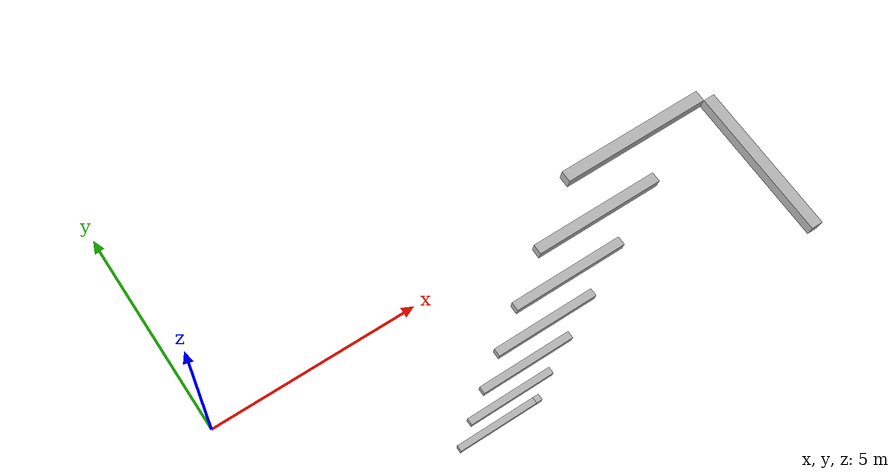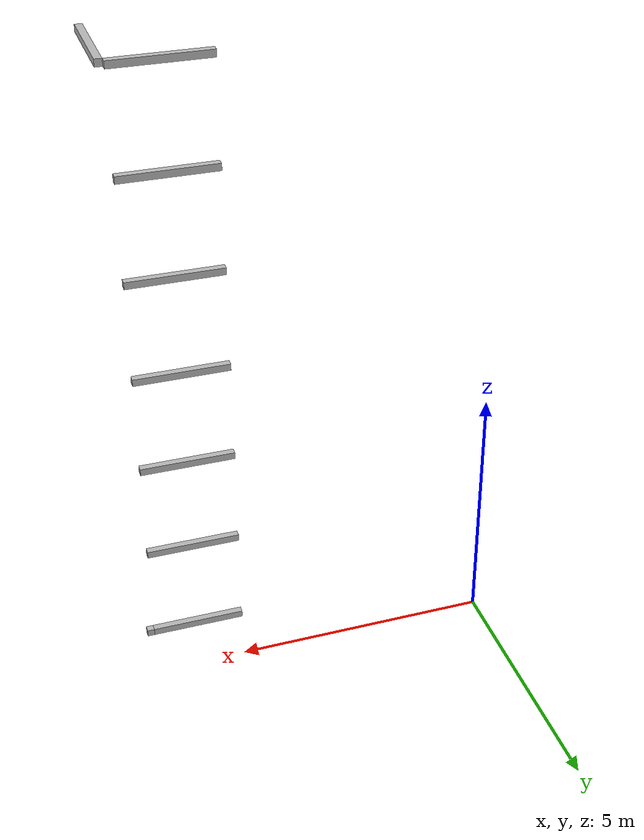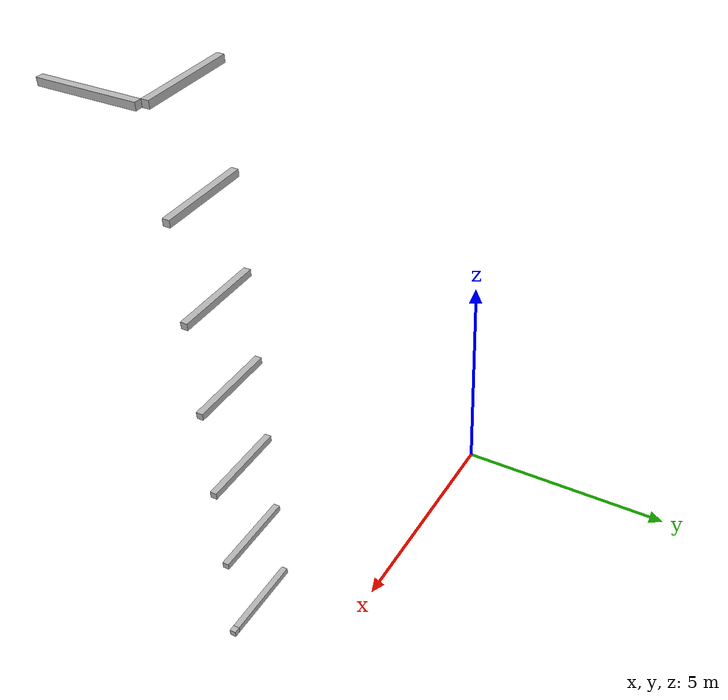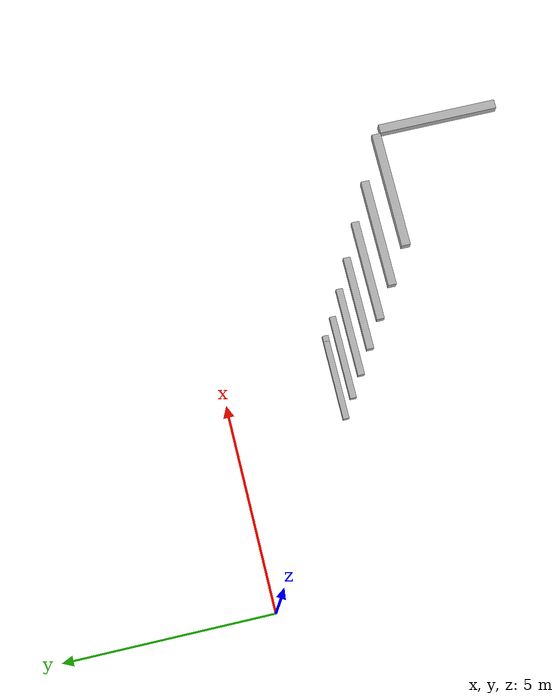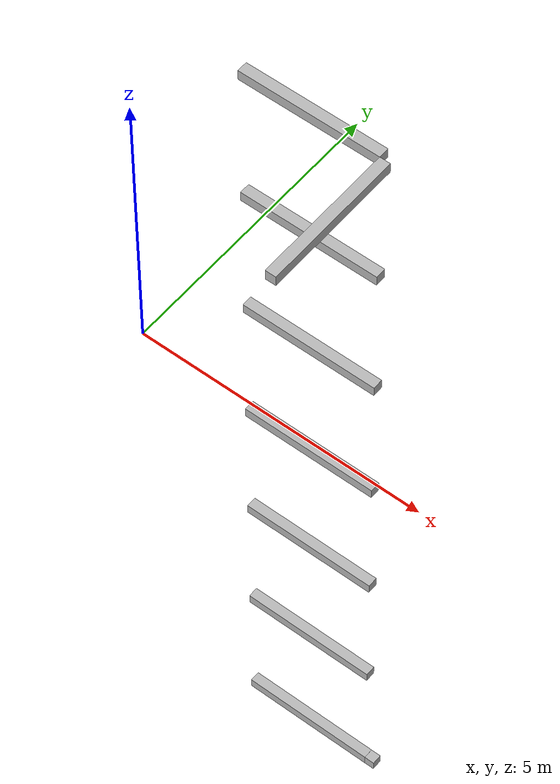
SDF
<sdf version="1.7">
 <world name="default">
  <model name="orthogonal_747_2.000.15_TS">
   <static>1</static>
   <link name="x_link_0_1_5">
    <inertial>
     <mass>1</mass>
     <inertia>
      <ixx>0.166667</ixx>
      <ixy>0</ixy>
      <ixz>0</ixz>
      <iyy>0.166667</iyy>
      <iyz>0</iyz>
      <izz>0.166667</izz>
     </inertia>
    </inertial>
    <pose>11.825 2.15 1.075 0 -0 0</pose>
    <visual name="visual_0">
     <laser_retro>267</laser_retro>
     <geometry><box><size>2 1e-06 0.15</size></box></geometry>
     <material>
      <script><name>Gazebo/Grey</name><uri>file://media/materials/scripts/gazebo.material</uri></script>
      <shader type="pixel"><normal_map>__default__</normal_map></shader>
      <ambient>0.678 0.498 0.659 1</ambient>
      <diffuse>0.7 0.7 0.7 1</diffuse>
      <specular>0.01 0.01 0.01 1</specular>
      <emissive>0 0 0 1</emissive>
     </material>
     <pose>0 -0.075 0 0 -0 0</pose>
     <transparency>1</transparency>
    </visual>
    <visual name="visual_1">
     <laser_retro>268</laser_retro>
     <geometry><box><size>2 1e-06 0.15</size></box></geometry>
     <material>
      <script><name>Gazebo/Grey</name><uri>file://media/materials/scripts/gazebo.material</uri></script>
      <shader type="pixel"><normal_map>__default__</normal_map></shader>
      <ambient>0.447 0.624 0.812 1</ambient>
      <diffuse>0.7 0.7 0.7 1</diffuse>
      <specular>0.01 0.01 0.01 1</specular>
      <emissive>0 0 0 1</emissive>
     </material>
     <pose>0 0.075 0 0 -0 0</pose>
     <transparency>1</transparency>
    </visual>
    <visual name="visual_2">
     <laser_retro>269</laser_retro>
     <geometry><box><size>2 0.15 1e-06</size></box></geometry>
     <material>
      <script><name>Gazebo/Grey</name><uri>file://media/materials/scripts/gazebo.material</uri></script>
      <shader type="pixel"><normal_map>__default__</normal_map></shader>
      <ambient>0.988 0.686 0.243 1</ambient>
      <diffuse>0.7 0.7 0.7 1</diffuse>
      <specular>0.01 0.01 0.01 1</specular>
      <emissive>0 0 0 1</emissive>
     </material>
     <pose>0 0 -0.075 0 -0 0</pose>
     <transparency>1</transparency>
    </visual>
    <visual name="visual_3">
     <laser_retro>270</laser_retro>
     <geometry><box><size>1e-06 0.15 0.15</size></box></geometry>
     <material>
      <script><name>Gazebo/Grey</name><uri>file://media/materials/scripts/gazebo.material</uri></script>
      <shader type="pixel"><normal_map>__default__</normal_map></shader>
      <ambient>0.988 0.914 0.31 1</ambient>
      <diffuse>0.7 0.7 0.7 1</diffuse>
      <specular>0.01 0.01 0.01 1</specular>
      <emissive>0 0 0 1</emissive>
     </material>
     <pose>1 0 0 0 -0 0</pose>
     <transparency>1</transparency>
    </visual>
    <visual name="visual_4">
     <laser_retro>271</laser_retro>
     <geometry><box><size>2 0.15 1e-06</size></box></geometry>
     <material>
      <script><name>Gazebo/Grey</name><uri>file://media/materials/scripts/gazebo.material</uri></script>
      <shader type="pixel"><normal_map>__default__</normal_map></shader>
      <ambient>0.937 0.161 0.161 1</ambient>
      <diffuse>0.7 0.7 0.7 1</diffuse>
      <specular>0.01 0.01 0.01 1</specular>
      <emissive>0 0 0 1</emissive>
     </material>
     <pose>0 0 0.075 0 -0 0</pose>
     <transparency>1</transparency>
    </visual>
    <visual name="visual_5">
     <laser_retro>272</laser_retro>
     <geometry><box><size>1e-06 0.15 0.15</size></box></geometry>
     <material>
      <script><name>Gazebo/Grey</name><uri>file://media/materials/scripts/gazebo.material</uri></script>
      <shader type="pixel"><normal_map>__default__</normal_map></shader>
      <ambient>0.541 0.886 0.204 1</ambient>
      <diffuse>0.7 0.7 0.7 1</diffuse>
      <specular>0.01 0.01 0.01 1</specular>
      <emissive>0 0 0 1</emissive>
     </material>
     <pose>-1 0 0 0 -0 0</pose>
     <transparency>1</transparency>
    </visual>
    <visual name="visual_texture">
     <geometry><box><size>1.9998 0.149985 0.149985</size></box></geometry>
     <material>
      <script>
       <uri>model://BASE_MODELS/simple_block_v2_textured/materials/scripts</uri>
       <uri>model://BASE_MODELS/simple_block_v2_textured/materials/textures</uri>
       <name>metal</name>
      </script>
     </material>
     <laser_retro>273</laser_retro>
    </visual>
    <collision name="collision">
     <geometry><box><size>2 0.15 0.15</size></box></geometry>
     <surface>
      <friction>
       <ode><mu>1</mu><mu2>1</mu2><fdir1>0 0 0</fdir1><slip1>0</slip1><slip2>0</slip2></ode>
       <torsional>
        <coefficient>1</coefficient>
        <patch_radius>0</patch_radius>
        <surface_radius>0</surface_radius>
        <use_patch_radius>1</use_patch_radius>
        <ode><slip>0</slip></ode>
       </torsional>
      </friction>
      <bounce><restitution_coefficient>0</restitution_coefficient><threshold>1e+06</threshold></bounce>
      <contact>
       <collide_without_contact>0</collide_without_contact>
       <collide_without_contact_bitmask>1</collide_without_contact_bitmask>
       <collide_bitmask>1</collide_bitmask>
       <ode>
        <soft_cfm>0</soft_cfm>
        <soft_erp>0.2</soft_erp>
        <kp>1e+13</kp>
        <kd>1</kd>
        <max_vel>0.01</max_vel>
        <min_depth>0</min_depth>
       </ode>
       <bullet>
        <split_impulse>1</split_impulse>
        <split_impulse_penetration_threshold>-0.01</split_impulse_penetration_threshold>
        <soft_cfm>0</soft_cfm>
        <soft_erp>0.2</soft_erp>
        <kp>1e+13</kp>
        <kd>1</kd>
       </bullet>
      </contact>
     </surface>
    </collision>
   </link>
   <link name="u_link_0_1_6">
    <inertial>
     <mass>1</mass>
     <inertia>
      <ixx>0.166667</ixx>
      <ixy>0</ixy>
      <ixz>0</ixz>
      <iyy>0.166667</iyy>
      <iyz>0</iyz>
      <izz>0.166667</izz>
     </inertia>
    </inertial>
    <pose>12.9 2.15 1.075 0 -0 0</pose>
    <visual name="visual_0">
     <laser_retro>302</laser_retro>
     <geometry><box><size>0.15 1e-06 0.15</size></box></geometry>
     <material>
      <script><name>Gazebo/Grey</name><uri>file://media/materials/scripts/gazebo.material</uri></script>
      <shader type="pixel"><normal_map>__default__</normal_map></shader>
      <ambient>0.678 0.498 0.659 1</ambient>
      <diffuse>0.7 0.7 0.7 1</diffuse>
      <specular>0.01 0.01 0.01 1</specular>
      <emissive>0 0 0 1</emissive>
     </material>
     <pose>0 -0.075 0 0 -0 0</pose>
     <transparency>1</transparency>
    </visual>
    <visual name="visual_1">
     <laser_retro>303</laser_retro>
     <geometry><box><size>0.15 1e-06 0.15</size></box></geometry>
     <material>
      <script><name>Gazebo/Grey</name><uri>file://media/materials/scripts/gazebo.material</uri></script>
      <shader type="pixel"><normal_map>__default__</normal_map></shader>
      <ambient>0.447 0.624 0.812 1</ambient>
      <diffuse>0.7 0.7 0.7 1</diffuse>
      <specular>0.01 0.01 0.01 1</specular>
      <emissive>0 0 0 1</emissive>
     </material>
     <pose>0 0.075 0 0 -0 0</pose>
     <transparency>1</transparency>
    </visual>
    <visual name="visual_2">
     <laser_retro>304</laser_retro>
     <geometry><box><size>0.15 0.15 1e-06</size></box></geometry>
     <material>
      <script><name>Gazebo/Grey</name><uri>file://media/materials/scripts/gazebo.material</uri></script>
      <shader type="pixel"><normal_map>__default__</normal_map></shader>
      <ambient>0.988 0.686 0.243 1</ambient>
      <diffuse>0.7 0.7 0.7 1</diffuse>
      <specular>0.01 0.01 0.01 1</specular>
      <emissive>0 0 0 1</emissive>
     </material>
     <pose>0 0 -0.075 0 -0 0</pose>
     <transparency>1</transparency>
    </visual>
    <visual name="visual_3">
     <laser_retro>305</laser_retro>
     <geometry><box><size>1e-06 0.15 0.15</size></box></geometry>
     <material>
      <script><name>Gazebo/Grey</name><uri>file://media/materials/scripts/gazebo.material</uri></script>
      <shader type="pixel"><normal_map>__default__</normal_map></shader>
      <ambient>0.988 0.914 0.31 1</ambient>
      <diffuse>0.7 0.7 0.7 1</diffuse>
      <specular>0.01 0.01 0.01 1</specular>
      <emissive>0 0 0 1</emissive>
     </material>
     <pose>0.075 0 0 0 -0 0</pose>
     <transparency>1</transparency>
    </visual>
    <visual name="visual_4">
     <laser_retro>306</laser_retro>
     <geometry><box><size>0.15 0.15 1e-06</size></box></geometry>
     <material>
      <script><name>Gazebo/Grey</name><uri>file://media/materials/scripts/gazebo.material</uri></script>
      <shader type="pixel"><normal_map>__default__</normal_map></shader>
      <ambient>0.937 0.161 0.161 1</ambient>
      <diffuse>0.7 0.7 0.7 1</diffuse>
      <specular>0.01 0.01 0.01 1</specular>
      <emissive>0 0 0 1</emissive>
     </material>
     <pose>0 0 0.075 0 -0 0</pose>
     <transparency>1</transparency>
    </visual>
    <visual name="visual_5">
     <laser_retro>307</laser_retro>
     <geometry><box><size>1e-06 0.15 0.15</size></box></geometry>
     <material>
      <script><name>Gazebo/Grey</name><uri>file://media/materials/scripts/gazebo.material</uri></script>
      <shader type="pixel"><normal_map>__default__</normal_map></shader>
      <ambient>0.541 0.886 0.204 1</ambient>
      <diffuse>0.7 0.7 0.7 1</diffuse>
      <specular>0.01 0.01 0.01 1</specular>
      <emissive>0 0 0 1</emissive>
     </material>
     <pose>-0.075 0 0 0 -0 0</pose>
     <transparency>1</transparency>
    </visual>
    <visual name="visual_texture">
     <geometry><box><size>0.149985 0.149985 0.149985</size></box></geometry>
     <material>
      <script>
       <uri>model://BASE_MODELS/simple_block_v2_textured/materials/scripts</uri>
       <uri>model://BASE_MODELS/simple_block_v2_textured/materials/textures</uri>
       <name>metal</name>
      </script>
     </material>
     <laser_retro>308</laser_retro>
    </visual>
    <collision name="collision">
     <geometry><box><size>0.15 0.15 0.15</size></box></geometry>
     <surface>
      <friction>
       <ode><mu>1</mu><mu2>1</mu2><fdir1>0 0 0</fdir1><slip1>0</slip1><slip2>0</slip2></ode>
       <torsional>
        <coefficient>1</coefficient>
        <patch_radius>0</patch_radius>
        <surface_radius>0</surface_radius>
        <use_patch_radius>1</use_patch_radius>
        <ode><slip>0</slip></ode>
       </torsional>
      </friction>
      <bounce><restitution_coefficient>0</restitution_coefficient><threshold>1e+06</threshold></bounce>
      <contact>
       <collide_without_contact>0</collide_without_contact>
       <collide_without_contact_bitmask>1</collide_without_contact_bitmask>
       <collide_bitmask>1</collide_bitmask>
       <ode>
        <soft_cfm>0</soft_cfm>
        <soft_erp>0.2</soft_erp>
        <kp>1e+13</kp>
        <kd>1</kd>
        <max_vel>0.01</max_vel>
        <min_depth>0</min_depth>
       </ode>
       <bullet>
        <split_impulse>1</split_impulse>
        <split_impulse_penetration_threshold>-0.01</split_impulse_penetration_threshold>
        <soft_cfm>0</soft_cfm>
        <soft_erp>0.2</soft_erp>
        <kp>1e+13</kp>
        <kd>1</kd>
       </bullet>
      </contact>
     </surface>
    </collision>
   </link>
   <link name="x_link_1_1_5">
    <inertial>
     <mass>1</mass>
     <inertia>
      <ixx>0.166667</ixx>
      <ixy>0</ixy>
      <ixz>0</ixz>
      <iyy>0.166667</iyy>
      <iyz>0</iyz>
      <izz>0.166667</izz>
     </inertia>
    </inertial>
    <pose>11.825 2.15 3.225 0 -0 0</pose>
    <visual name="visual_0">
     <laser_retro>1079</laser_retro>
     <geometry><box><size>2 1e-06 0.15</size></box></geometry>
     <material>
      <script><name>Gazebo/Grey</name><uri>file://media/materials/scripts/gazebo.material</uri></script>
      <shader type="pixel"><normal_map>__default__</normal_map></shader>
      <ambient>0.678 0.498 0.659 1</ambient>
      <diffuse>0.7 0.7 0.7 1</diffuse>
      <specular>0.01 0.01 0.01 1</specular>
      <emissive>0 0 0 1</emissive>
     </material>
     <pose>0 -0.075 0 0 -0 0</pose>
     <transparency>1</transparency>
    </visual>
    <visual name="visual_1">
     <laser_retro>1080</laser_retro>
     <geometry><box><size>2 1e-06 0.15</size></box></geometry>
     <material>
      <script><name>Gazebo/Grey</name><uri>file://media/materials/scripts/gazebo.material</uri></script>
      <shader type="pixel"><normal_map>__default__</normal_map></shader>
      <ambient>0.447 0.624 0.812 1</ambient>
      <diffuse>0.7 0.7 0.7 1</diffuse>
      <specular>0.01 0.01 0.01 1</specular>
      <emissive>0 0 0 1</emissive>
     </material>
     <pose>0 0.075 0 0 -0 0</pose>
     <transparency>1</transparency>
    </visual>
    <visual name="visual_2">
     <laser_retro>1081</laser_retro>
     <geometry><box><size>2 0.15 1e-06</size></box></geometry>
     <material>
      <script><name>Gazebo/Grey</name><uri>file://media/materials/scripts/gazebo.material</uri></script>
      <shader type="pixel"><normal_map>__default__</normal_map></shader>
      <ambient>0.988 0.686 0.243 1</ambient>
      <diffuse>0.7 0.7 0.7 1</diffuse>
      <specular>0.01 0.01 0.01 1</specular>
      <emissive>0 0 0 1</emissive>
     </material>
     <pose>0 0 -0.075 0 -0 0</pose>
     <transparency>1</transparency>
    </visual>
    <visual name="visual_3">
     <laser_retro>1082</laser_retro>
     <geometry><box><size>1e-06 0.15 0.15</size></box></geometry>
     <material>
      <script><name>Gazebo/Grey</name><uri>file://media/materials/scripts/gazebo.material</uri></script>
      <shader type="pixel"><normal_map>__default__</normal_map></shader>
      <ambient>0.988 0.914 0.31 1</ambient>
      <diffuse>0.7 0.7 0.7 1</diffuse>
      <specular>0.01 0.01 0.01 1</specular>
      <emissive>0 0 0 1</emissive>
     </material>
     <pose>1 0 0 0 -0 0</pose>
     <transparency>1</transparency>
    </visual>
    <visual name="visual_4">
     <laser_retro>1083</laser_retro>
     <geometry><box><size>2 0.15 1e-06</size></box></geometry>
     <material>
      <script><name>Gazebo/Grey</name><uri>file://media/materials/scripts/gazebo.material</uri></script>
      <shader type="pixel"><normal_map>__default__</normal_map></shader>
      <ambient>0.937 0.161 0.161 1</ambient>
      <diffuse>0.7 0.7 0.7 1</diffuse>
      <specular>0.01 0.01 0.01 1</specular>
      <emissive>0 0 0 1</emissive>
     </material>
     <pose>0 0 0.075 0 -0 0</pose>
     <transparency>1</transparency>
    </visual>
    <visual name="visual_5">
     <laser_retro>1084</laser_retro>
     <geometry><box><size>1e-06 0.15 0.15</size></box></geometry>
     <material>
      <script><name>Gazebo/Grey</name><uri>file://media/materials/scripts/gazebo.material</uri></script>
      <shader type="pixel"><normal_map>__default__</normal_map></shader>
      <ambient>0.541 0.886 0.204 1</ambient>
      <diffuse>0.7 0.7 0.7 1</diffuse>
      <specular>0.01 0.01 0.01 1</specular>
      <emissive>0 0 0 1</emissive>
     </material>
     <pose>-1 0 0 0 -0 0</pose>
     <transparency>1</transparency>
    </visual>
    <visual name="visual_texture">
     <geometry><box><size>1.9998 0.149985 0.149985</size></box></geometry>
     <material>
      <script>
       <uri>model://BASE_MODELS/simple_block_v2_textured/materials/scripts</uri>
       <uri>model://BASE_MODELS/simple_block_v2_textured/materials/textures</uri>
       <name>metal</name>
      </script>
     </material>
     <laser_retro>1085</laser_retro>
    </visual>
    <collision name="collision">
     <geometry><box><size>2 0.15 0.15</size></box></geometry>
     <surface>
      <friction>
       <ode><mu>1</mu><mu2>1</mu2><fdir1>0 0 0</fdir1><slip1>0</slip1><slip2>0</slip2></ode>
       <torsional>
        <coefficient>1</coefficient>
        <patch_radius>0</patch_radius>
        <surface_radius>0</surface_radius>
        <use_patch_radius>1</use_patch_radius>
        <ode><slip>0</slip></ode>
       </torsional>
      </friction>
      <bounce><restitution_coefficient>0</restitution_coefficient><threshold>1e+06</threshold></bounce>
      <contact>
       <collide_without_contact>0</collide_without_contact>
       <collide_without_contact_bitmask>1</collide_without_contact_bitmask>
       <collide_bitmask>1</collide_bitmask>
       <ode>
        <soft_cfm>0</soft_cfm>
        <soft_erp>0.2</soft_erp>
        <kp>1e+13</kp>
        <kd>1</kd>
        <max_vel>0.01</max_vel>
        <min_depth>0</min_depth>
       </ode>
       <bullet>
        <split_impulse>1</split_impulse>
        <split_impulse_penetration_threshold>-0.01</split_impulse_penetration_threshold>
        <soft_cfm>0</soft_cfm>
        <soft_erp>0.2</soft_erp>
        <kp>1e+13</kp>
        <kd>1</kd>
       </bullet>
      </contact>
     </surface>
    </collision>
   </link>
   <link name="x_link_2_1_5">
    <inertial>
     <mass>1</mass>
     <inertia>
      <ixx>0.166667</ixx>
      <ixy>0</ixy>
      <ixz>0</ixz>
      <iyy>0.166667</iyy>
      <iyz>0</iyz>
      <izz>0.166667</izz>
     </inertia>
    </inertial>
    <pose>11.825 2.15 5.375 0 -0 0</pose>
    <visual name="visual_0">
     <laser_retro>1982</laser_retro>
     <geometry><box><size>2 1e-06 0.15</size></box></geometry>
     <material>
      <script><name>Gazebo/Grey</name><uri>file://media/materials/scripts/gazebo.material</uri></script>
      <shader type="pixel"><normal_map>__default__</normal_map></shader>
      <ambient>0.678 0.498 0.659 1</ambient>
      <diffuse>0.7 0.7 0.7 1</diffuse>
      <specular>0.01 0.01 0.01 1</specular>
      <emissive>0 0 0 1</emissive>
     </material>
     <pose>0 -0.075 0 0 -0 0</pose>
     <transparency>1</transparency>
    </visual>
    <visual name="visual_1">
     <laser_retro>1983</laser_retro>
     <geometry><box><size>2 1e-06 0.15</size></box></geometry>
     <material>
      <script><name>Gazebo/Grey</name><uri>file://media/materials/scripts/gazebo.material</uri></script>
      <shader type="pixel"><normal_map>__default__</normal_map></shader>
      <ambient>0.447 0.624 0.812 1</ambient>
      <diffuse>0.7 0.7 0.7 1</diffuse>
      <specular>0.01 0.01 0.01 1</specular>
      <emissive>0 0 0 1</emissive>
     </material>
     <pose>0 0.075 0 0 -0 0</pose>
     <transparency>1</transparency>
    </visual>
    <visual name="visual_2">
     <laser_retro>1984</laser_retro>
     <geometry><box><size>2 0.15 1e-06</size></box></geometry>
     <material>
      <script><name>Gazebo/Grey</name><uri>file://media/materials/scripts/gazebo.material</uri></script>
      <shader type="pixel"><normal_map>__default__</normal_map></shader>
      <ambient>0.988 0.686 0.243 1</ambient>
      <diffuse>0.7 0.7 0.7 1</diffuse>
      <specular>0.01 0.01 0.01 1</specular>
      <emissive>0 0 0 1</emissive>
     </material>
     <pose>0 0 -0.075 0 -0 0</pose>
     <transparency>1</transparency>
    </visual>
    <visual name="visual_3">
     <laser_retro>1985</laser_retro>
     <geometry><box><size>1e-06 0.15 0.15</size></box></geometry>
     <material>
      <script><name>Gazebo/Grey</name><uri>file://media/materials/scripts/gazebo.material</uri></script>
      <shader type="pixel"><normal_map>__default__</normal_map></shader>
      <ambient>0.988 0.914 0.31 1</ambient>
      <diffuse>0.7 0.7 0.7 1</diffuse>
      <specular>0.01 0.01 0.01 1</specular>
      <emissive>0 0 0 1</emissive>
     </material>
     <pose>1 0 0 0 -0 0</pose>
     <transparency>1</transparency>
    </visual>
    <visual name="visual_4">
     <laser_retro>1986</laser_retro>
     <geometry><box><size>2 0.15 1e-06</size></box></geometry>
     <material>
      <script><name>Gazebo/Grey</name><uri>file://media/materials/scripts/gazebo.material</uri></script>
      <shader type="pixel"><normal_map>__default__</normal_map></shader>
      <ambient>0.937 0.161 0.161 1</ambient>
      <diffuse>0.7 0.7 0.7 1</diffuse>
      <specular>0.01 0.01 0.01 1</specular>
      <emissive>0 0 0 1</emissive>
     </material>
     <pose>0 0 0.075 0 -0 0</pose>
     <transparency>1</transparency>
    </visual>
    <visual name="visual_5">
     <laser_retro>1987</laser_retro>
     <geometry><box><size>1e-06 0.15 0.15</size></box></geometry>
     <material>
      <script><name>Gazebo/Grey</name><uri>file://media/materials/scripts/gazebo.material</uri></script>
      <shader type="pixel"><normal_map>__default__</normal_map></shader>
      <ambient>0.541 0.886 0.204 1</ambient>
      <diffuse>0.7 0.7 0.7 1</diffuse>
      <specular>0.01 0.01 0.01 1</specular>
      <emissive>0 0 0 1</emissive>
     </material>
     <pose>-1 0 0 0 -0 0</pose>
     <transparency>1</transparency>
    </visual>
    <visual name="visual_texture">
     <geometry><box><size>1.9998 0.149985 0.149985</size></box></geometry>
     <material>
      <script>
       <uri>model://BASE_MODELS/simple_block_v2_textured/materials/scripts</uri>
       <uri>model://BASE_MODELS/simple_block_v2_textured/materials/textures</uri>
       <name>metal</name>
      </script>
     </material>
     <laser_retro>1988</laser_retro>
    </visual>
    <collision name="collision">
     <geometry><box><size>2 0.15 0.15</size></box></geometry>
     <surface>
      <friction>
       <ode><mu>1</mu><mu2>1</mu2><fdir1>0 0 0</fdir1><slip1>0</slip1><slip2>0</slip2></ode>
       <torsional>
        <coefficient>1</coefficient>
        <patch_radius>0</patch_radius>
        <surface_radius>0</surface_radius>
        <use_patch_radius>1</use_patch_radius>
        <ode><slip>0</slip></ode>
       </torsional>
      </friction>
      <bounce><restitution_coefficient>0</restitution_coefficient><threshold>1e+06</threshold></bounce>
      <contact>
       <collide_without_contact>0</collide_without_contact>
       <collide_without_contact_bitmask>1</collide_without_contact_bitmask>
       <collide_bitmask>1</collide_bitmask>
       <ode>
        <soft_cfm>0</soft_cfm>
        <soft_erp>0.2</soft_erp>
        <kp>1e+13</kp>
        <kd>1</kd>
        <max_vel>0.01</max_vel>
        <min_depth>0</min_depth>
       </ode>
       <bullet>
        <split_impulse>1</split_impulse>
        <split_impulse_penetration_threshold>-0.01</split_impulse_penetration_threshold>
        <soft_cfm>0</soft_cfm>
        <soft_erp>0.2</soft_erp>
        <kp>1e+13</kp>
        <kd>1</kd>
       </bullet>
      </contact>
     </surface>
    </collision>
   </link>
   <link name="x_link_3_1_5">
    <inertial>
     <mass>1</mass>
     <inertia>
      <ixx>0.166667</ixx>
      <ixy>0</ixy>
      <ixz>0</ixz>
      <iyy>0.166667</iyy>
      <iyz>0</iyz>
      <izz>0.166667</izz>
     </inertia>
    </inertial>
    <pose>11.825 2.15 7.525 0 -0 0</pose>
    <visual name="visual_0">
     <laser_retro>2885</laser_retro>
     <geometry><box><size>2 1e-06 0.15</size></box></geometry>
     <material>
      <script><name>Gazebo/Grey</name><uri>file://media/materials/scripts/gazebo.material</uri></script>
      <shader type="pixel"><normal_map>__default__</normal_map></shader>
      <ambient>0.678 0.498 0.659 1</ambient>
      <diffuse>0.7 0.7 0.7 1</diffuse>
      <specular>0.01 0.01 0.01 1</specular>
      <emissive>0 0 0 1</emissive>
     </material>
     <pose>0 -0.075 0 0 -0 0</pose>
     <transparency>1</transparency>
    </visual>
    <visual name="visual_1">
     <laser_retro>2886</laser_retro>
     <geometry><box><size>2 1e-06 0.15</size></box></geometry>
     <material>
      <script><name>Gazebo/Grey</name><uri>file://media/materials/scripts/gazebo.material</uri></script>
      <shader type="pixel"><normal_map>__default__</normal_map></shader>
      <ambient>0.447 0.624 0.812 1</ambient>
      <diffuse>0.7 0.7 0.7 1</diffuse>
      <specular>0.01 0.01 0.01 1</specular>
      <emissive>0 0 0 1</emissive>
     </material>
     <pose>0 0.075 0 0 -0 0</pose>
     <transparency>1</transparency>
    </visual>
    <visual name="visual_2">
     <laser_retro>2887</laser_retro>
     <geometry><box><size>2 0.15 1e-06</size></box></geometry>
     <material>
      <script><name>Gazebo/Grey</name><uri>file://media/materials/scripts/gazebo.material</uri></script>
      <shader type="pixel"><normal_map>__default__</normal_map></shader>
      <ambient>0.988 0.686 0.243 1</ambient>
      <diffuse>0.7 0.7 0.7 1</diffuse>
      <specular>0.01 0.01 0.01 1</specular>
      <emissive>0 0 0 1</emissive>
     </material>
     <pose>0 0 -0.075 0 -0 0</pose>
     <transparency>1</transparency>
    </visual>
    <visual name="visual_3">
     <laser_retro>2888</laser_retro>
     <geometry><box><size>1e-06 0.15 0.15</size></box></geometry>
     <material>
      <script><name>Gazebo/Grey</name><uri>file://media/materials/scripts/gazebo.material</uri></script>
      <shader type="pixel"><normal_map>__default__</normal_map></shader>
      <ambient>0.988 0.914 0.31 1</ambient>
      <diffuse>0.7 0.7 0.7 1</diffuse>
      <specular>0.01 0.01 0.01 1</specular>
      <emissive>0 0 0 1</emissive>
     </material>
     <pose>1 0 0 0 -0 0</pose>
     <transparency>1</transparency>
    </visual>
    <visual name="visual_4">
     <laser_retro>2889</laser_retro>
     <geometry><box><size>2 0.15 1e-06</size></box></geometry>
     <material>
      <script><name>Gazebo/Grey</name><uri>file://media/materials/scripts/gazebo.material</uri></script>
      <shader type="pixel"><normal_map>__default__</normal_map></shader>
      <ambient>0.937 0.161 0.161 1</ambient>
      <diffuse>0.7 0.7 0.7 1</diffuse>
      <specular>0.01 0.01 0.01 1</specular>
      <emissive>0 0 0 1</emissive>
     </material>
     <pose>0 0 0.075 0 -0 0</pose>
     <transparency>1</transparency>
    </visual>
    <visual name="visual_5">
     <laser_retro>2890</laser_retro>
     <geometry><box><size>1e-06 0.15 0.15</size></box></geometry>
     <material>
      <script><name>Gazebo/Grey</name><uri>file://media/materials/scripts/gazebo.material</uri></script>
      <shader type="pixel"><normal_map>__default__</normal_map></shader>
      <ambient>0.541 0.886 0.204 1</ambient>
      <diffuse>0.7 0.7 0.7 1</diffuse>
      <specular>0.01 0.01 0.01 1</specular>
      <emissive>0 0 0 1</emissive>
     </material>
     <pose>-1 0 0 0 -0 0</pose>
     <transparency>1</transparency>
    </visual>
    <visual name="visual_texture">
     <geometry><box><size>1.9998 0.149985 0.149985</size></box></geometry>
     <material>
      <script>
       <uri>model://BASE_MODELS/simple_block_v2_textured/materials/scripts</uri>
       <uri>model://BASE_MODELS/simple_block_v2_textured/materials/textures</uri>
       <name>metal</name>
      </script>
     </material>
     <laser_retro>2891</laser_retro>
    </visual>
    <collision name="collision">
     <geometry><box><size>2 0.15 0.15</size></box></geometry>
     <surface>
      <friction>
       <ode><mu>1</mu><mu2>1</mu2><fdir1>0 0 0</fdir1><slip1>0</slip1><slip2>0</slip2></ode>
       <torsional>
        <coefficient>1</coefficient>
        <patch_radius>0</patch_radius>
        <surface_radius>0</surface_radius>
        <use_patch_radius>1</use_patch_radius>
        <ode><slip>0</slip></ode>
       </torsional>
      </friction>
      <bounce><restitution_coefficient>0</restitution_coefficient><threshold>1e+06</threshold></bounce>
      <contact>
       <collide_without_contact>0</collide_without_contact>
       <collide_without_contact_bitmask>1</collide_without_contact_bitmask>
       <collide_bitmask>1</collide_bitmask>
       <ode>
        <soft_cfm>0</soft_cfm>
        <soft_erp>0.2</soft_erp>
        <kp>1e+13</kp>
        <kd>1</kd>
        <max_vel>0.01</max_vel>
        <min_depth>0</min_depth>
       </ode>
       <bullet>
        <split_impulse>1</split_impulse>
        <split_impulse_penetration_threshold>-0.01</split_impulse_penetration_threshold>
        <soft_cfm>0</soft_cfm>
        <soft_erp>0.2</soft_erp>
        <kp>1e+13</kp>
        <kd>1</kd>
       </bullet>
      </contact>
     </surface>
    </collision>
   </link>
   <link name="x_link_4_1_5">
    <inertial>
     <mass>1</mass>
     <inertia>
      <ixx>0.166667</ixx>
      <ixy>0</ixy>
      <ixz>0</ixz>
      <iyy>0.166667</iyy>
      <iyz>0</iyz>
      <izz>0.166667</izz>
     </inertia>
    </inertial>
    <pose>11.825 2.15 9.675 0 -0 0</pose>
    <visual name="visual_0">
     <laser_retro>3788</laser_retro>
     <geometry><box><size>2 1e-06 0.15</size></box></geometry>
     <material>
      <script><name>Gazebo/Grey</name><uri>file://media/materials/scripts/gazebo.material</uri></script>
      <shader type="pixel"><normal_map>__default__</normal_map></shader>
      <ambient>0.678 0.498 0.659 1</ambient>
      <diffuse>0.7 0.7 0.7 1</diffuse>
      <specular>0.01 0.01 0.01 1</specular>
      <emissive>0 0 0 1</emissive>
     </material>
     <pose>0 -0.075 0 0 -0 0</pose>
     <transparency>1</transparency>
    </visual>
    <visual name="visual_1">
     <laser_retro>3789</laser_retro>
     <geometry><box><size>2 1e-06 0.15</size></box></geometry>
     <material>
      <script><name>Gazebo/Grey</name><uri>file://media/materials/scripts/gazebo.material</uri></script>
      <shader type="pixel"><normal_map>__default__</normal_map></shader>
      <ambient>0.447 0.624 0.812 1</ambient>
      <diffuse>0.7 0.7 0.7 1</diffuse>
      <specular>0.01 0.01 0.01 1</specular>
      <emissive>0 0 0 1</emissive>
     </material>
     <pose>0 0.075 0 0 -0 0</pose>
     <transparency>1</transparency>
    </visual>
    <visual name="visual_2">
     <laser_retro>3790</laser_retro>
     <geometry><box><size>2 0.15 1e-06</size></box></geometry>
     <material>
      <script><name>Gazebo/Grey</name><uri>file://media/materials/scripts/gazebo.material</uri></script>
      <shader type="pixel"><normal_map>__default__</normal_map></shader>
      <ambient>0.988 0.686 0.243 1</ambient>
      <diffuse>0.7 0.7 0.7 1</diffuse>
      <specular>0.01 0.01 0.01 1</specular>
      <emissive>0 0 0 1</emissive>
     </material>
     <pose>0 0 -0.075 0 -0 0</pose>
     <transparency>1</transparency>
    </visual>
    <visual name="visual_3">
     <laser_retro>3791</laser_retro>
     <geometry><box><size>1e-06 0.15 0.15</size></box></geometry>
     <material>
      <script><name>Gazebo/Grey</name><uri>file://media/materials/scripts/gazebo.material</uri></script>
      <shader type="pixel"><normal_map>__default__</normal_map></shader>
      <ambient>0.988 0.914 0.31 1</ambient>
      <diffuse>0.7 0.7 0.7 1</diffuse>
      <specular>0.01 0.01 0.01 1</specular>
      <emissive>0 0 0 1</emissive>
     </material>
     <pose>1 0 0 0 -0 0</pose>
     <transparency>1</transparency>
    </visual>
    <visual name="visual_4">
     <laser_retro>3792</laser_retro>
     <geometry><box><size>2 0.15 1e-06</size></box></geometry>
     <material>
      <script><name>Gazebo/Grey</name><uri>file://media/materials/scripts/gazebo.material</uri></script>
      <shader type="pixel"><normal_map>__default__</normal_map></shader>
      <ambient>0.937 0.161 0.161 1</ambient>
      <diffuse>0.7 0.7 0.7 1</diffuse>
      <specular>0.01 0.01 0.01 1</specular>
      <emissive>0 0 0 1</emissive>
     </material>
     <pose>0 0 0.075 0 -0 0</pose>
     <transparency>1</transparency>
    </visual>
    <visual name="visual_5">
     <laser_retro>3793</laser_retro>
     <geometry><box><size>1e-06 0.15 0.15</size></box></geometry>
     <material>
      <script><name>Gazebo/Grey</name><uri>file://media/materials/scripts/gazebo.material</uri></script>
      <shader type="pixel"><normal_map>__default__</normal_map></shader>
      <ambient>0.541 0.886 0.204 1</ambient>
      <diffuse>0.7 0.7 0.7 1</diffuse>
      <specular>0.01 0.01 0.01 1</specular>
      <emissive>0 0 0 1</emissive>
     </material>
     <pose>-1 0 0 0 -0 0</pose>
     <transparency>1</transparency>
    </visual>
    <visual name="visual_texture">
     <geometry><box><size>1.9998 0.149985 0.149985</size></box></geometry>
     <material>
      <script>
       <uri>model://BASE_MODELS/simple_block_v2_textured/materials/scripts</uri>
       <uri>model://BASE_MODELS/simple_block_v2_textured/materials/textures</uri>
       <name>metal</name>
      </script>
     </material>
     <laser_retro>3794</laser_retro>
    </visual>
    <collision name="collision">
     <geometry><box><size>2 0.15 0.15</size></box></geometry>
     <surface>
      <friction>
       <ode><mu>1</mu><mu2>1</mu2><fdir1>0 0 0</fdir1><slip1>0</slip1><slip2>0</slip2></ode>
       <torsional>
        <coefficient>1</coefficient>
        <patch_radius>0</patch_radius>
        <surface_radius>0</surface_radius>
        <use_patch_radius>1</use_patch_radius>
        <ode><slip>0</slip></ode>
       </torsional>
      </friction>
      <bounce><restitution_coefficient>0</restitution_coefficient><threshold>1e+06</threshold></bounce>
      <contact>
       <collide_without_contact>0</collide_without_contact>
       <collide_without_contact_bitmask>1</collide_without_contact_bitmask>
       <collide_bitmask>1</collide_bitmask>
       <ode>
        <soft_cfm>0</soft_cfm>
        <soft_erp>0.2</soft_erp>
        <kp>1e+13</kp>
        <kd>1</kd>
        <max_vel>0.01</max_vel>
        <min_depth>0</min_depth>
       </ode>
       <bullet>
        <split_impulse>1</split_impulse>
        <split_impulse_penetration_threshold>-0.01</split_impulse_penetration_threshold>
        <soft_cfm>0</soft_cfm>
        <soft_erp>0.2</soft_erp>
        <kp>1e+13</kp>
        <kd>1</kd>
       </bullet>
      </contact>
     </surface>
    </collision>
   </link>
   <link name="x_link_5_1_5">
    <inertial>
     <mass>1</mass>
     <inertia>
      <ixx>0.166667</ixx>
      <ixy>0</ixy>
      <ixz>0</ixz>
      <iyy>0.166667</iyy>
      <iyz>0</iyz>
      <izz>0.166667</izz>
     </inertia>
    </inertial>
    <pose>11.825 2.15 11.825 0 -0 0</pose>
    <visual name="visual_0">
     <laser_retro>4691</laser_retro>
     <geometry><box><size>2 1e-06 0.15</size></box></geometry>
     <material>
      <script><name>Gazebo/Grey</name><uri>file://media/materials/scripts/gazebo.material</uri></script>
      <shader type="pixel"><normal_map>__default__</normal_map></shader>
      <ambient>0.678 0.498 0.659 1</ambient>
      <diffuse>0.7 0.7 0.7 1</diffuse>
      <specular>0.01 0.01 0.01 1</specular>
      <emissive>0 0 0 1</emissive>
     </material>
     <pose>0 -0.075 0 0 -0 0</pose>
     <transparency>1</transparency>
    </visual>
    <visual name="visual_1">
     <laser_retro>4692</laser_retro>
     <geometry><box><size>2 1e-06 0.15</size></box></geometry>
     <material>
      <script><name>Gazebo/Grey</name><uri>file://media/materials/scripts/gazebo.material</uri></script>
      <shader type="pixel"><normal_map>__default__</normal_map></shader>
      <ambient>0.447 0.624 0.812 1</ambient>
      <diffuse>0.7 0.7 0.7 1</diffuse>
      <specular>0.01 0.01 0.01 1</specular>
      <emissive>0 0 0 1</emissive>
     </material>
     <pose>0 0.075 0 0 -0 0</pose>
     <transparency>1</transparency>
    </visual>
    <visual name="visual_2">
     <laser_retro>4693</laser_retro>
     <geometry><box><size>2 0.15 1e-06</size></box></geometry>
     <material>
      <script><name>Gazebo/Grey</name><uri>file://media/materials/scripts/gazebo.material</uri></script>
      <shader type="pixel"><normal_map>__default__</normal_map></shader>
      <ambient>0.988 0.686 0.243 1</ambient>
      <diffuse>0.7 0.7 0.7 1</diffuse>
      <specular>0.01 0.01 0.01 1</specular>
      <emissive>0 0 0 1</emissive>
     </material>
     <pose>0 0 -0.075 0 -0 0</pose>
     <transparency>1</transparency>
    </visual>
    <visual name="visual_3">
     <laser_retro>4694</laser_retro>
     <geometry><box><size>1e-06 0.15 0.15</size></box></geometry>
     <material>
      <script><name>Gazebo/Grey</name><uri>file://media/materials/scripts/gazebo.material</uri></script>
      <shader type="pixel"><normal_map>__default__</normal_map></shader>
      <ambient>0.988 0.914 0.31 1</ambient>
      <diffuse>0.7 0.7 0.7 1</diffuse>
      <specular>0.01 0.01 0.01 1</specular>
      <emissive>0 0 0 1</emissive>
     </material>
     <pose>1 0 0 0 -0 0</pose>
     <transparency>1</transparency>
    </visual>
    <visual name="visual_4">
     <laser_retro>4695</laser_retro>
     <geometry><box><size>2 0.15 1e-06</size></box></geometry>
     <material>
      <script><name>Gazebo/Grey</name><uri>file://media/materials/scripts/gazebo.material</uri></script>
      <shader type="pixel"><normal_map>__default__</normal_map></shader>
      <ambient>0.937 0.161 0.161 1</ambient>
      <diffuse>0.7 0.7 0.7 1</diffuse>
      <specular>0.01 0.01 0.01 1</specular>
      <emissive>0 0 0 1</emissive>
     </material>
     <pose>0 0 0.075 0 -0 0</pose>
     <transparency>1</transparency>
    </visual>
    <visual name="visual_5">
     <laser_retro>4696</laser_retro>
     <geometry><box><size>1e-06 0.15 0.15</size></box></geometry>
     <material>
      <script><name>Gazebo/Grey</name><uri>file://media/materials/scripts/gazebo.material</uri></script>
      <shader type="pixel"><normal_map>__default__</normal_map></shader>
      <ambient>0.541 0.886 0.204 1</ambient>
      <diffuse>0.7 0.7 0.7 1</diffuse>
      <specular>0.01 0.01 0.01 1</specular>
      <emissive>0 0 0 1</emissive>
     </material>
     <pose>-1 0 0 0 -0 0</pose>
     <transparency>1</transparency>
    </visual>
    <visual name="visual_texture">
     <geometry><box><size>1.9998 0.149985 0.149985</size></box></geometry>
     <material>
      <script>
       <uri>model://BASE_MODELS/simple_block_v2_textured/materials/scripts</uri>
       <uri>model://BASE_MODELS/simple_block_v2_textured/materials/textures</uri>
       <name>metal</name>
      </script>
     </material>
     <laser_retro>4697</laser_retro>
    </visual>
    <collision name="collision">
     <geometry><box><size>2 0.15 0.15</size></box></geometry>
     <surface>
      <friction>
       <ode><mu>1</mu><mu2>1</mu2><fdir1>0 0 0</fdir1><slip1>0</slip1><slip2>0</slip2></ode>
       <torsional>
        <coefficient>1</coefficient>
        <patch_radius>0</patch_radius>
        <surface_radius>0</surface_radius>
        <use_patch_radius>1</use_patch_radius>
        <ode><slip>0</slip></ode>
       </torsional>
      </friction>
      <bounce><restitution_coefficient>0</restitution_coefficient><threshold>1e+06</threshold></bounce>
      <contact>
       <collide_without_contact>0</collide_without_contact>
       <collide_without_contact_bitmask>1</collide_without_contact_bitmask>
       <collide_bitmask>1</collide_bitmask>
       <ode>
        <soft_cfm>0</soft_cfm>
        <soft_erp>0.2</soft_erp>
        <kp>1e+13</kp>
        <kd>1</kd>
        <max_vel>0.01</max_vel>
        <min_depth>0</min_depth>
       </ode>
       <bullet>
        <split_impulse>1</split_impulse>
        <split_impulse_penetration_threshold>-0.01</split_impulse_penetration_threshold>
        <soft_cfm>0</soft_cfm>
        <soft_erp>0.2</soft_erp>
        <kp>1e+13</kp>
        <kd>1</kd>
       </bullet>
      </contact>
     </surface>
    </collision>
   </link>
   <link name="y_link_6_0_6">
    <inertial>
     <mass>1</mass>
     <inertia>
      <ixx>0.166667</ixx>
      <ixy>0</ixy>
      <ixz>0</ixz>
      <iyy>0.166667</iyy>
      <iyz>0</iyz>
      <izz>0.166667</izz>
     </inertia>
    </inertial>
    <pose>12.9 1.075 13.975 0 -0 0</pose>
    <visual name="visual_0">
     <laser_retro>5440</laser_retro>
     <geometry><box><size>0.15 1e-06 0.15</size></box></geometry>
     <material>
      <script><name>Gazebo/Grey</name><uri>file://media/materials/scripts/gazebo.material</uri></script>
      <shader type="pixel"><normal_map>__default__</normal_map></shader>
      <ambient>0.678 0.498 0.659 1</ambient>
      <diffuse>0.7 0.7 0.7 1</diffuse>
      <specular>0.01 0.01 0.01 1</specular>
      <emissive>0 0 0 1</emissive>
     </material>
     <pose>0 -1 0 0 -0 0</pose>
     <transparency>1</transparency>
    </visual>
    <visual name="visual_1">
     <laser_retro>5441</laser_retro>
     <geometry><box><size>0.15 1e-06 0.15</size></box></geometry>
     <material>
      <script><name>Gazebo/Grey</name><uri>file://media/materials/scripts/gazebo.material</uri></script>
      <shader type="pixel"><normal_map>__default__</normal_map></shader>
      <ambient>0.447 0.624 0.812 1</ambient>
      <diffuse>0.7 0.7 0.7 1</diffuse>
      <specular>0.01 0.01 0.01 1</specular>
      <emissive>0 0 0 1</emissive>
     </material>
     <pose>0 1 0 0 -0 0</pose>
     <transparency>1</transparency>
    </visual>
    <visual name="visual_2">
     <laser_retro>5442</laser_retro>
     <geometry><box><size>0.15 2 1e-06</size></box></geometry>
     <material>
      <script><name>Gazebo/Grey</name><uri>file://media/materials/scripts/gazebo.material</uri></script>
      <shader type="pixel"><normal_map>__default__</normal_map></shader>
      <ambient>0.988 0.686 0.243 1</ambient>
      <diffuse>0.7 0.7 0.7 1</diffuse>
      <specular>0.01 0.01 0.01 1</specular>
      <emissive>0 0 0 1</emissive>
     </material>
     <pose>0 0 -0.075 0 -0 0</pose>
     <transparency>1</transparency>
    </visual>
    <visual name="visual_3">
     <laser_retro>5443</laser_retro>
     <geometry><box><size>1e-06 2 0.15</size></box></geometry>
     <material>
      <script><name>Gazebo/Grey</name><uri>file://media/materials/scripts/gazebo.material</uri></script>
      <shader type="pixel"><normal_map>__default__</normal_map></shader>
      <ambient>0.988 0.914 0.31 1</ambient>
      <diffuse>0.7 0.7 0.7 1</diffuse>
      <specular>0.01 0.01 0.01 1</specular>
      <emissive>0 0 0 1</emissive>
     </material>
     <pose>0.075 0 0 0 -0 0</pose>
     <transparency>1</transparency>
    </visual>
    <visual name="visual_4">
     <laser_retro>5444</laser_retro>
     <geometry><box><size>0.15 2 1e-06</size></box></geometry>
     <material>
      <script><name>Gazebo/Grey</name><uri>file://media/materials/scripts/gazebo.material</uri></script>
      <shader type="pixel"><normal_map>__default__</normal_map></shader>
      <ambient>0.937 0.161 0.161 1</ambient>
      <diffuse>0.7 0.7 0.7 1</diffuse>
      <specular>0.01 0.01 0.01 1</specular>
      <emissive>0 0 0 1</emissive>
     </material>
     <pose>0 0 0.075 0 -0 0</pose>
     <transparency>1</transparency>
    </visual>
    <visual name="visual_5">
     <laser_retro>5445</laser_retro>
     <geometry><box><size>1e-06 2 0.15</size></box></geometry>
     <material>
      <script><name>Gazebo/Grey</name><uri>file://media/materials/scripts/gazebo.material</uri></script>
      <shader type="pixel"><normal_map>__default__</normal_map></shader>
      <ambient>0.541 0.886 0.204 1</ambient>
      <diffuse>0.7 0.7 0.7 1</diffuse>
      <specular>0.01 0.01 0.01 1</specular>
      <emissive>0 0 0 1</emissive>
     </material>
     <pose>-0.075 0 0 0 -0 0</pose>
     <transparency>1</transparency>
    </visual>
    <visual name="visual_texture">
     <geometry><box><size>0.149985 1.9998 0.149985</size></box></geometry>
     <material>
      <script>
       <uri>model://BASE_MODELS/simple_block_v2_textured/materials/scripts</uri>
       <uri>model://BASE_MODELS/simple_block_v2_textured/materials/textures</uri>
       <name>metal</name>
      </script>
     </material>
     <laser_retro>5446</laser_retro>
    </visual>
    <collision name="collision">
     <geometry><box><size>0.15 2 0.15</size></box></geometry>
     <surface>
      <friction>
       <ode><mu>1</mu><mu2>1</mu2><fdir1>0 0 0</fdir1><slip1>0</slip1><slip2>0</slip2></ode>
       <torsional>
        <coefficient>1</coefficient>
        <patch_radius>0</patch_radius>
        <surface_radius>0</surface_radius>
        <use_patch_radius>1</use_patch_radius>
        <ode><slip>0</slip></ode>
       </torsional>
      </friction>
      <bounce><restitution_coefficient>0</restitution_coefficient><threshold>1e+06</threshold></bounce>
      <contact>
       <collide_without_contact>0</collide_without_contact>
       <collide_without_contact_bitmask>1</collide_without_contact_bitmask>
       <collide_bitmask>1</collide_bitmask>
       <ode>
        <soft_cfm>0</soft_cfm>
        <soft_erp>0.2</soft_erp>
        <kp>1e+13</kp>
        <kd>1</kd>
        <max_vel>0.01</max_vel>
        <min_depth>0</min_depth>
       </ode>
       <bullet>
        <split_impulse>1</split_impulse>
        <split_impulse_penetration_threshold>-0.01</split_impulse_penetration_threshold>
        <soft_cfm>0</soft_cfm>
        <soft_erp>0.2</soft_erp>
        <kp>1e+13</kp>
        <kd>1</kd>
       </bullet>
      </contact>
     </surface>
    </collision>
   </link>
   <link name="x_link_6_1_5">
    <inertial>
     <mass>1</mass>
     <inertia>
      <ixx>0.166667</ixx>
      <ixy>0</ixy>
      <ixz>0</ixz>
      <iyy>0.166667</iyy>
      <iyz>0</iyz>
      <izz>0.166667</izz>
     </inertia>
    </inertial>
    <pose>11.825 2.15 13.975 0 -0 0</pose>
    <visual name="visual_0">
     <laser_retro>5622</laser_retro>
     <geometry><box><size>2 1e-06 0.15</size></box></geometry>
     <material>
      <script><name>Gazebo/Grey</name><uri>file://media/materials/scripts/gazebo.material</uri></script>
      <shader type="pixel"><normal_map>__default__</normal_map></shader>
      <ambient>0.678 0.498 0.659 1</ambient>
      <diffuse>0.7 0.7 0.7 1</diffuse>
      <specular>0.01 0.01 0.01 1</specular>
      <emissive>0 0 0 1</emissive>
     </material>
     <pose>0 -0.075 0 0 -0 0</pose>
     <transparency>1</transparency>
    </visual>
    <visual name="visual_1">
     <laser_retro>5623</laser_retro>
     <geometry><box><size>2 1e-06 0.15</size></box></geometry>
     <material>
      <script><name>Gazebo/Grey</name><uri>file://media/materials/scripts/gazebo.material</uri></script>
      <shader type="pixel"><normal_map>__default__</normal_map></shader>
      <ambient>0.447 0.624 0.812 1</ambient>
      <diffuse>0.7 0.7 0.7 1</diffuse>
      <specular>0.01 0.01 0.01 1</specular>
      <emissive>0 0 0 1</emissive>
     </material>
     <pose>0 0.075 0 0 -0 0</pose>
     <transparency>1</transparency>
    </visual>
    <visual name="visual_2">
     <laser_retro>5624</laser_retro>
     <geometry><box><size>2 0.15 1e-06</size></box></geometry>
     <material>
      <script><name>Gazebo/Grey</name><uri>file://media/materials/scripts/gazebo.material</uri></script>
      <shader type="pixel"><normal_map>__default__</normal_map></shader>
      <ambient>0.988 0.686 0.243 1</ambient>
      <diffuse>0.7 0.7 0.7 1</diffuse>
      <specular>0.01 0.01 0.01 1</specular>
      <emissive>0 0 0 1</emissive>
     </material>
     <pose>0 0 -0.075 0 -0 0</pose>
     <transparency>1</transparency>
    </visual>
    <visual name="visual_3">
     <laser_retro>5625</laser_retro>
     <geometry><box><size>1e-06 0.15 0.15</size></box></geometry>
     <material>
      <script><name>Gazebo/Grey</name><uri>file://media/materials/scripts/gazebo.material</uri></script>
      <shader type="pixel"><normal_map>__default__</normal_map></shader>
      <ambient>0.988 0.914 0.31 1</ambient>
      <diffuse>0.7 0.7 0.7 1</diffuse>
      <specular>0.01 0.01 0.01 1</specular>
      <emissive>0 0 0 1</emissive>
     </material>
     <pose>1 0 0 0 -0 0</pose>
     <transparency>1</transparency>
    </visual>
    <visual name="visual_4">
     <laser_retro>5626</laser_retro>
     <geometry><box><size>2 0.15 1e-06</size></box></geometry>
     <material>
      <script><name>Gazebo/Grey</name><uri>file://media/materials/scripts/gazebo.material</uri></script>
      <shader type="pixel"><normal_map>__default__</normal_map></shader>
      <ambient>0.937 0.161 0.161 1</ambient>
      <diffuse>0.7 0.7 0.7 1</diffuse>
      <specular>0.01 0.01 0.01 1</specular>
      <emissive>0 0 0 1</emissive>
     </material>
     <pose>0 0 0.075 0 -0 0</pose>
     <transparency>1</transparency>
    </visual>
    <visual name="visual_5">
     <laser_retro>5627</laser_retro>
     <geometry><box><size>1e-06 0.15 0.15</size></box></geometry>
     <material>
      <script><name>Gazebo/Grey</name><uri>file://media/materials/scripts/gazebo.material</uri></script>
      <shader type="pixel"><normal_map>__default__</normal_map></shader>
      <ambient>0.541 0.886 0.204 1</ambient>
      <diffuse>0.7 0.7 0.7 1</diffuse>
      <specular>0.01 0.01 0.01 1</specular>
      <emissive>0 0 0 1</emissive>
     </material>
     <pose>-1 0 0 0 -0 0</pose>
     <transparency>1</transparency>
    </visual>
    <visual name="visual_texture">
     <geometry><box><size>1.9998 0.149985 0.149985</size></box></geometry>
     <material>
      <script>
       <uri>model://BASE_MODELS/simple_block_v2_textured/materials/scripts</uri>
       <uri>model://BASE_MODELS/simple_block_v2_textured/materials/textures</uri>
       <name>metal</name>
      </script>
     </material>
     <laser_retro>5628</laser_retro>
    </visual>
    <collision name="collision">
     <geometry><box><size>2 0.15 0.15</size></box></geometry>
     <surface>
      <friction>
       <ode><mu>1</mu><mu2>1</mu2><fdir1>0 0 0</fdir1><slip1>0</slip1><slip2>0</slip2></ode>
       <torsional>
        <coefficient>1</coefficient>
        <patch_radius>0</patch_radius>
        <surface_radius>0</surface_radius>
        <use_patch_radius>1</use_patch_radius>
        <ode><slip>0</slip></ode>
       </torsional>
      </friction>
      <bounce><restitution_coefficient>0</restitution_coefficient><threshold>1e+06</threshold></bounce>
      <contact>
       <collide_without_contact>0</collide_without_contact>
       <collide_without_contact_bitmask>1</collide_without_contact_bitmask>
       <collide_bitmask>1</collide_bitmask>
       <ode>
        <soft_cfm>0</soft_cfm>
        <soft_erp>0.2</soft_erp>
        <kp>1e+13</kp>
        <kd>1</kd>
        <max_vel>0.01</max_vel>
        <min_depth>0</min_depth>
       </ode>
       <bullet>
        <split_impulse>1</split_impulse>
        <split_impulse_penetration_threshold>-0.01</split_impulse_penetration_threshold>
        <soft_cfm>0</soft_cfm>
        <soft_erp>0.2</soft_erp>
        <kp>1e+13</kp>
        <kd>1</kd>
       </bullet>
      </contact>
     </surface>
    </collision>
   </link>
   <pose>-6.47624 -5 -2.5 0 -0 0</pose>
  </model>
 </world>
</sdf>
